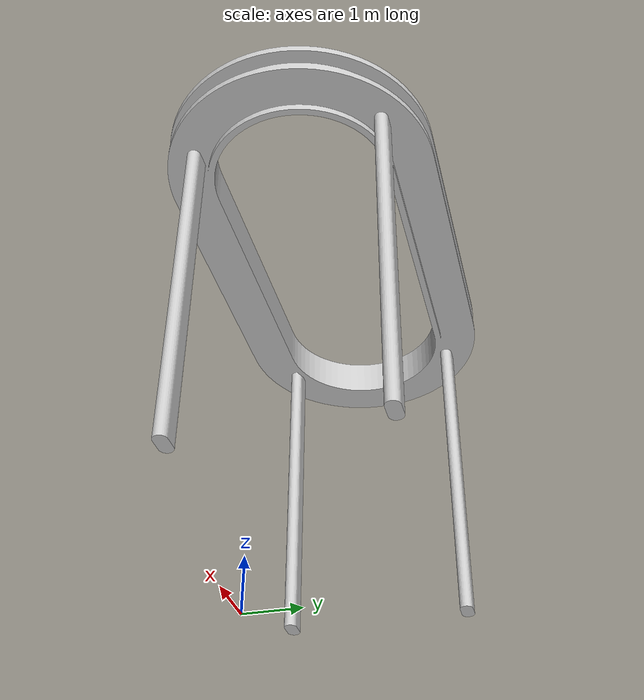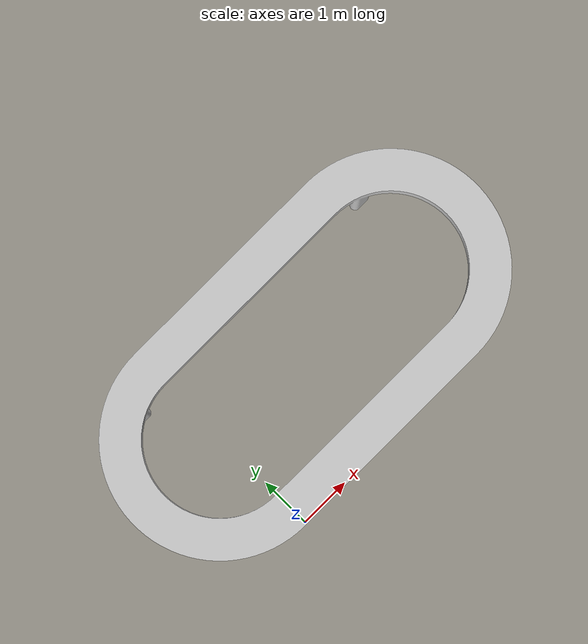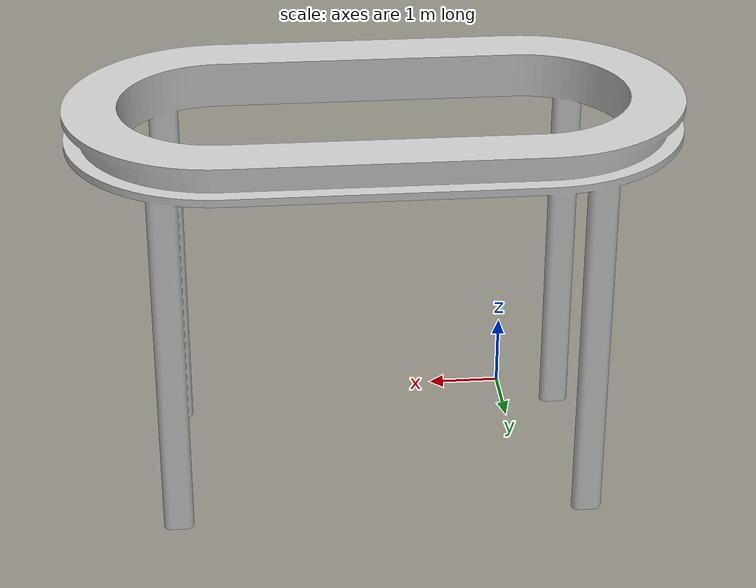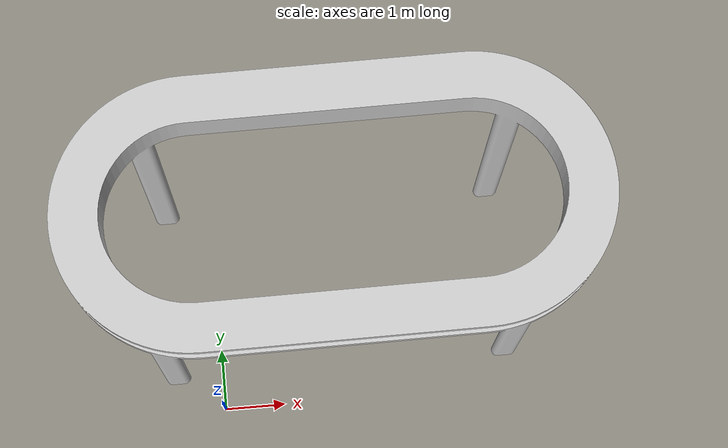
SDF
<?xml version="1.0" ?>
<sdf version="1.6">
  <model name="cell">
    <!-- 모델을 고정시킴 -->
    <static>true</static>
    <pose> 0 0 0 0 0 0</pose>
    <link name="link">
      <!-- 관성 요소 정의 -->
      <inertial>
        <mass>1.0</mass>
        <inertia>
          <ixx>0.01</ixx>
          <ixy>0.0</ixy>
          <ixz>0.0</ixz>
          <iyy>0.01</iyy>
          <iyz>0.0</iyz>
          <izz>0.01</izz>
        </inertia>
      </inertial>
      <!-- 시각적 요소 정의 -->
      <visual name="visual">
        <geometry>
          <mesh>
            <uri>model://cell/meshes/cell.dae</uri>
          </mesh>
        </geometry>
      </visual>
      <!-- 충돌 요소 정의 -->
      <collision name="collision">
        <geometry>
          <mesh>
            <uri>model://cell/meshes/cell.dae</uri>
            <scale>1 1 1</scale>
          </mesh>
        </geometry>
        <surface>
          <friction>
            <ode>
              <mu>1.0</mu>
              <mu2>1.0</mu2>
              <fdir1>0 0 0</fdir1>
              <slip1>0</slip1>
              <slip2>0</slip2>
            </ode>
          </friction>
          <bounce>
            <restitution_coefficient>0.0</restitution_coefficient>
            <threshold>1e+06</threshold>
          </bounce>
          <contact>
            <ode>
              <soft_cfm>0.0</soft_cfm>
              <soft_erp>0.2</soft_erp>
              <kp>1e+13</kp>
              <kd>1.0</kd>
              <max_vel>0.01</max_vel>
              <min_depth>0.001</min_depth>
            </ode>
          </contact>
        </surface>
      </collision>
    </link>
    <static>1</static>
  </model>
</sdf>
